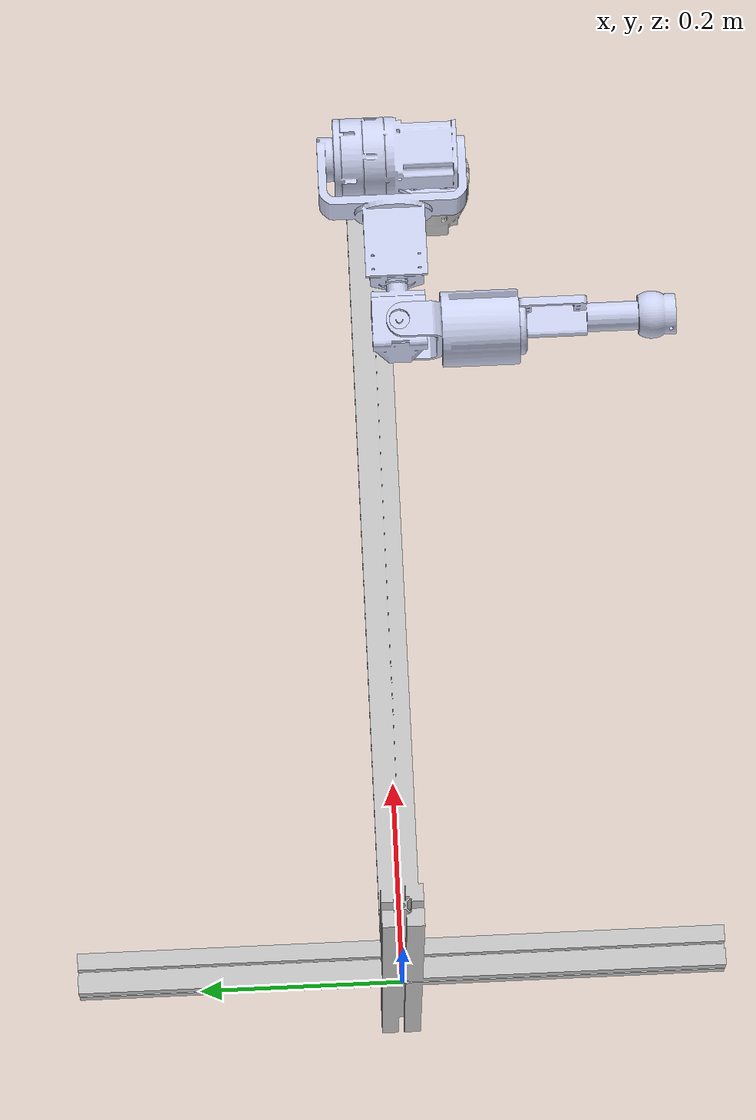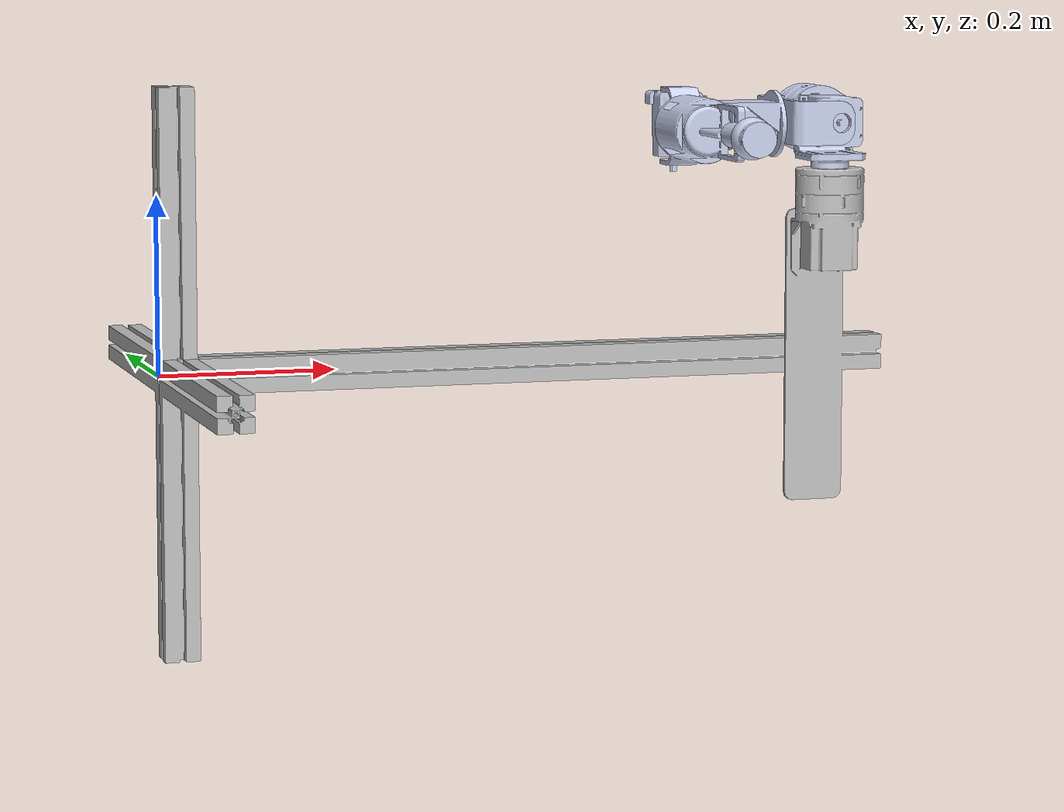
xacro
<?xml version="1.0"?>
<robot xmlns:xacro="http://www.ros.org/wiki/xacro" name="structure">
    <xacro:arg name="initial_positions_file" default="initial_positions.yaml" />

    <!-- Import structure urdf file -->
    <xacro:include filename="$(find simulation)/urdf/structure.urdf" />

    <!-- Import control_xacro -->
    <xacro:include filename="structure.ros2_control.xacro" />

    <xacro:structure_ros2_control name="FakeSystem" initial_positions_file="$(arg initial_positions_file)"/>

</robot>

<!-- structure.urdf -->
<robot
  name="structure">
  <!-- Dummy root link -->
  <link name="dummy_root_link">
      <inertial>
          <origin xyz="0 0 0" rpy="0 0 0"/>
          <mass value="0"/>
          <inertia ixx="0" ixy="0" ixz="0" iyy="0" iyz="0" izz="0"/>
      </inertial>
  </link>
  <link
    name="base_link">
    <inertial>
      <origin
        xyz="0.288254206450787 -0.0091997939503143 0.0226196209968666"
        rpy="0 0 0" />
      <mass
        value="2.71204264213078" />
      <inertia
        ixx="0.0114337911252394"
        ixy="-2.96734282003324E-08"
        ixz="4.84584273451362E-08"
        iyy="0.0624811448015093"
        iyz="4.98927049303481E-06"
        izz="0.0616434489627293" />
    </inertial>
    <visual>
      <origin
        xyz="0 0 0"
        rpy="0 0 0" />
      <geometry>
        <mesh
          filename="package://simulation/meshes/base_link.STL" />
      </geometry>
      <material
        name="">
        <color
          rgba="0.752941176470588 0.752941176470588 0.752941176470588 1" />
      </material>
    </visual>
    <collision>
      <origin
        xyz="0 0 0"
        rpy="0 0 0" />
      <geometry>
        <mesh
          filename="package://simulation/meshes/base_link.STL" />
      </geometry>
    </collision>
  </link>
  <joint name="dummy_to_base" type="fixed">
      <parent link="dummy_root_link"/>
      <child link="base_link"/>
  </joint>
  <link
    name="Link_1">
    <inertial>
      <origin
        xyz="-0.0337282336528616 0.00123774978740708 0.0721830829018513"
        rpy="0 0 0" />
      <mass
        value="0.420093635057637" />
      <inertia
        ixx="0.000256083732465909"
        ixy="-3.99170266250502E-08"
        ixz="4.75152381565343E-06"
        iyy="0.00018803318979449"
        iyz="4.52360894369062E-08"
        izz="0.000194145300752605" />
    </inertial>
    <visual>
      <origin
        xyz="0 0 0"
        rpy="0 0 0" />
      <geometry>
        <mesh
          filename="package://simulation/meshes/Link_1.STL" />
      </geometry>
      <material
        name="">
        <color
          rgba="0.792156862745098 0.819607843137255 0.933333333333333 1" />
      </material>
    </visual>
    <collision>
      <origin
        xyz="0 0 0"
        rpy="0 0 0" />
      <geometry>
        <mesh
          filename="package://simulation/meshes/Link_1.STL" />
      </geometry>
    </collision>
  </link>
  <joint
    name="Joint_1"
    type="revolute">
    <origin
      xyz="0.7675 -0.06215 0.1956"
      rpy="0 0 -1.5708" />
    <parent
      link="base_link" />
    <child
      link="Link_1" />
    <axis
      xyz="0 0 1" />
    <limit
      lower="-1.57"
      upper="1.57"
      effort="300"
      velocity="1" />
  </joint>
  <link
    name="Link_2">
    <inertial>
      <origin
        xyz="0.0416298378287598 -6.09470490440245E-05 -0.0663038404490417"
        rpy="0 0 0" />
      <mass
        value="0.278615955025223" />
      <inertia
        ixx="0.000165002912302521"
        ixy="-1.31094353708643E-11"
        ixz="-2.96260989967252E-05"
        iyy="0.000468565895924395"
        iyz="8.99879249902309E-06"
        izz="0.000407476308496427" />
    </inertial>
    <visual>
      <origin
        xyz="0 0 0"
        rpy="0 0 0" />
      <geometry>
        <mesh
          filename="package://simulation/meshes/Link_2.STL" />
      </geometry>
      <material
        name="">
        <color
          rgba="0.792156862745098 0.819607843137255 0.933333333333333 1" />
      </material>
    </visual>
    <collision>
      <origin
        xyz="0 0 0"
        rpy="0 0 0" />
      <geometry>
        <mesh
          filename="package://simulation/meshes/Link_2.STL" />
      </geometry>
    </collision>
  </link>
  <joint
    name="Joint_2"
    type="revolute">
    <origin
      xyz="0 0.0013362 0.07666"
      rpy="1.5708 0 3.1416" />
    <parent
      link="Link_1" />
    <child
      link="Link_2" />
    <axis
      xyz="1 0 0" />
    <limit
      lower="0"
      upper="3.142"
      effort="250"
      velocity="1" />
  </joint>
  <link
    name="Link_3">
    <inertial>
      <origin
        xyz="-0.00255572998753838 -0.000138853216705294 -0.040413033479959"
        rpy="0 0 0" />
      <mass
        value="0.181975615916788" />
      <inertia
        ixx="5.98760291726209E-05"
        ixy="-1.01654287036154E-08"
        ixz="-7.14820951270207E-06"
        iyy="8.71073633176546E-05"
        iyz="2.29352817486163E-20"
        izz="9.55833970874025E-05" />
    </inertial>
    <visual>
      <origin
        xyz="0 0 0"
        rpy="0 0 0" />
      <geometry>
        <mesh
          filename="package://simulation/meshes/Link_3.STL" />
      </geometry>
      <material
        name="">
        <color
          rgba="0.792156862745098 0.819607843137255 0.933333333333333 1" />
      </material>
    </visual>
    <collision>
      <origin
        xyz="0 0 0"
        rpy="0 0 0" />
      <geometry>
        <mesh
          filename="package://simulation/meshes/Link_3.STL" />
      </geometry>
    </collision>
  </link>
  <joint
    name="Joint_3"
    type="revolute">
    <origin
      xyz="0.038437 -0.00375 -0.12973"
      rpy="0 0 -1.5708" />
    <parent
      link="Link_2" />
    <child
      link="Link_3" />
    <axis
      xyz="0 0 1" />
    <limit
      lower="-1.57"
      upper="1.57"
      effort="200"
      velocity="1" />
  </joint>
  <link
    name="Link_4">
    <inertial>
      <origin
        xyz="-0.000204143477795682 -1.48706843228208E-08 0.0729352587861481"
        rpy="0 0 0" />
      <mass
        value="0.290561826608547" />
      <inertia
        ixx="0.000215343751812786"
        ixy="-1.18549672936912E-10"
        ixz="1.46007563330613E-06"
        iyy="0.000241962713427212"
        iyz="1.36290875047269E-10"
        izz="0.000191038892171142" />
    </inertial>
    <visual>
      <origin
        xyz="0 0 0"
        rpy="0 0 0" />
      <geometry>
        <mesh
          filename="package://simulation/meshes/Link_4.STL" />
      </geometry>
      <material
        name="">
        <color
          rgba="0.792156862745098 0.819607843137255 0.933333333333333 1" />
      </material>
    </visual>
    <collision>
      <origin
        xyz="0 0 0"
        rpy="0 0 0" />
      <geometry>
        <mesh
          filename="package://simulation/meshes/Link_4.STL" />
      </geometry>
    </collision>
  </link>
  <joint
    name="Joint_4"
    type="revolute">
    <origin
      xyz="0 0 -0.047"
      rpy="1.5708 0 0" />
    <parent
      link="Link_3" />
    <child
      link="Link_4" />
    <axis
      xyz="-1 0 0" />
    <limit
      lower="-1.57"
      upper="1.57"
      effort="150"
      velocity="2" />
  </joint>
  <link
    name="Link_5">
    <inertial>
      <origin
        xyz="7.52893854205627E-09 -0.00588084447256662 0.0735173344149918"
        rpy="0 0 0" />
      <mass
        value="0.09899847472984" />
      <inertia
        ixx="0.000233936398203996"
        ixy="3.56312559160043E-12"
        ixz="2.69379226551096E-11"
        iyy="0.000236429656540369"
        iyz="3.81602268364248E-06"
        izz="2.12990655219596E-05" />
    </inertial>
    <visual>
      <origin
        xyz="0 0 0"
        rpy="0 0 0" />
      <geometry>
        <mesh
          filename="package://simulation/meshes/Link_5.STL" />
      </geometry>
      <material
        name="">
        <color
          rgba="0.792156862745098 0.819607843137255 0.933333333333333 1" />
      </material>
    </visual>
    <collision>
      <origin
        xyz="0 0 0"
        rpy="0 0 0" />
      <geometry>
        <mesh
          filename="package://simulation/meshes/Link_5.STL" />
      </geometry>
    </collision>
  </link>
  <joint
    name="Joint_5"
    type="revolute">
    <origin
      xyz="-0.0003934 0 0.11591"
      rpy="0 0 3.1416" />
    <parent
      link="Link_4" />
    <child
      link="Link_5" />
    <axis
      xyz="0 0 1" />
    <limit
      lower="-1.57"
      upper="1.57"
      effort="100"
      velocity="2" />
  </joint>
  <link
    name="Link_6">
    <inertial>
      <origin
        xyz="1.54813459968262E-08 0.00699176208068461 -2.1994034093975E-09"
        rpy="0 0 0" />
      <mass
        value="0.0219203307644374" />
      <inertia
        ixx="6.24219812154435E-06"
        ixy="-1.78757331985773E-12"
        ixz="1.01577205547272E-12"
        iyy="7.19149255148497E-06"
        iyz="3.79315945833703E-13"
        izz="6.23132089471632E-06" />
    </inertial>
    <visual>
      <origin
        xyz="0 0 0"
        rpy="0 0 0" />
      <geometry>
        <mesh
          filename="package://simulation/meshes/Link_6.STL" />
      </geometry>
      <material
        name="">
        <color
          rgba="0.792156862745098 0.819607843137255 0.933333333333333 1" />
      </material>
    </visual>
    <collision>
      <origin
        xyz="0 0 0"
        rpy="0 0 0" />
      <geometry>
        <mesh
          filename="package://simulation/meshes/Link_6.STL" />
      </geometry>
    </collision>
  </link>
  <joint
    name="Joint_6"
    type="revolute">
    <origin
      xyz="0 -0.006 0.12885"
      rpy="1.5708 0 -0.16202" />
    <parent
      link="Link_5" />
    <child
      link="Link_6" />
    <axis
      xyz="0 1 0" />
    <limit
      lower="-1.57"
      upper="1.57"
      effort="100"
      velocity="2" />
  </joint>
  <gazebo>
      <plugin
          filename="libignition-gazebo-scene-broadcaster-system.so"
          name="ignition::gazebo::systems::SceneBroadcaster">
      </plugin>
  </gazebo>

</robot>
